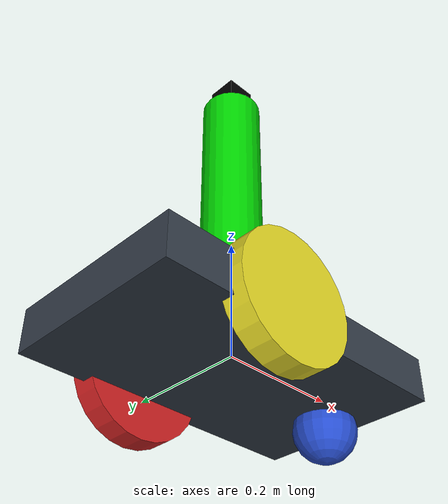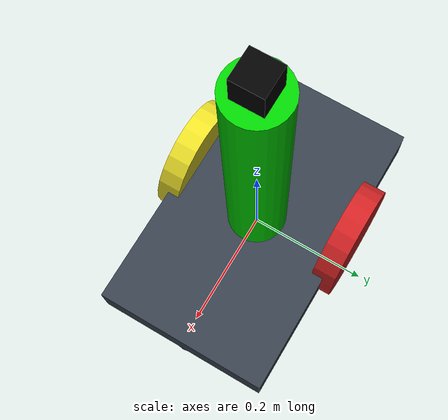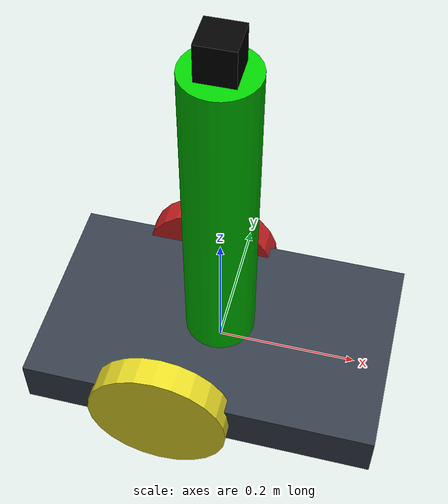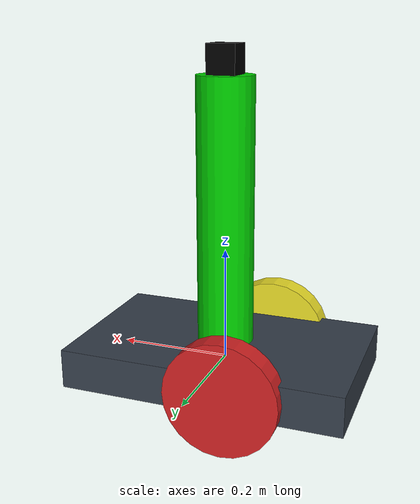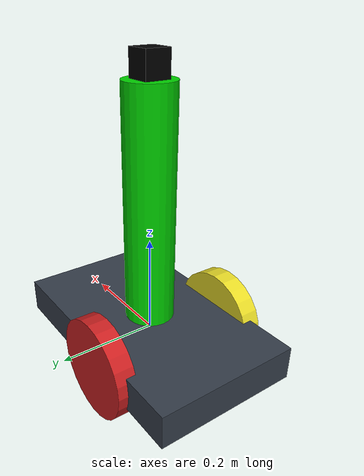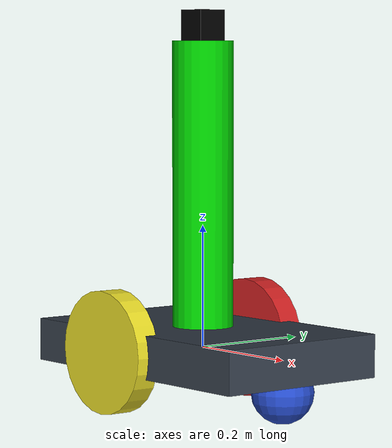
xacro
<?xml version="1.0" ?>
<robot name="robot_rot_camera" xmlns:xacro="http://ros.org/wiki/xacro">
<xacro:include filename="$(find robot_simulation_description)/urdf/robot_rot_camera.gazebo"/>

    <!--    Define weels properies  -->
    <xacro:property name="length_wheel" value="0.04" />
    <xacro:property name="radius_wheel" value="0.1" />

    <!--    Define a general inertial matrix    -->
    <xacro:macro name="default_inertial" params="mass">
        <inertial>
            <mass value="${mass}" />
            <origin rpy="0 1.5707 1.5707" xyz="0 0 0"/>
            <inertia ixx="0.000526666666667" ixy="0" ixz="0" iyy="0.000526666666667" iyz="0" izz="0.001"/>
        </inertial>
    </xacro:macro>

    <!--    Define the wheel geometry   -->
    <xacro:macro name="wheel_geometry">
        <geometry>
            <cylinder length="${length_wheel}" radius="${radius_wheel}"/>
        </geometry>
    </xacro:macro>

    <!--    Define a bunch of colors    -->
    <material name="black">
        <color rgba="0.0 0.0 0.0 1.0"/>
    </material>
    <material name="blue">
        <color rgba="0.203125 0.23828125 0.28515625 1.0"/>
    </material>
    <material name="green">
        <color rgba="0.0 0.8 0.0 1.0"/>
    </material>
    <material name="grey">
        <color rgba="0.2 0.2 0.2 1.0"/>
    </material>
    <material name="orange">
        <color rgba="1.0 0.423529411765 0.0392156862745 1.0"/>
    </material>
    <material name="brown">
        <color rgba="0.870588235294 0.811764705882 0.764705882353 1.0"/>
    </material>
    <material name="red">
        <color rgba="0.80078125 0.12890625 0.1328125 1.0"/>
    </material>
    <material name="white">
        <color rgba="1.0 1.0 1.0 1.0"/>
    </material>

    <!--    Define the moving platform link -->
    <link name="link_chassis">
        <!-- pose and inertial -->
        <pose>0 0 0.1 0 0 0</pose>
        <inertial>
            <mass value="5"/>
            <origin rpy="0 0 0" xyz="0 0 0.1"/>
            <inertia ixx="0.0395416666667" ixy="0" ixz="0" iyy="0.106208333333" iyz="0" izz="0.106208333333"/>
        </inertial>
        <!--    The body of the moving platform    -->
        <collision name="collision_chassis">
            <geometry>
                <box size="0.5 0.3 0.07"/>
            </geometry>
        </collision>
        <visual>
            <origin rpy="0 0 0" xyz="0 0 0"/>
            <geometry>
                <box size="0.5 0.3 0.07"/>
            </geometry>
            <material name="blue"/>
        </visual>
        <!--    The castor wheel in the front  -->
        <collision name="caster_front_collision">
            <origin rpy=" 0 0 0" xyz="0.2 0 -0.05"/>
            <geometry>
                <sphere radius="0.05"/>
            </geometry>
        </collision>
        <visual name="caster_front_visual">
            <origin rpy=" 0 0 0" xyz="0.2 0 -0.05"/>
            <geometry>
                <sphere radius="0.05"/>
            </geometry>
        </visual>
    </link>

    <!--    The fixed wheel on the right    -->
    <link name="link_right_wheel">
        <xacro:default_inertial mass="0.2"/>
        <collision name="link_right_wheel_collision">
            <origin rpy="0 1.5707 1.5707" xyz="0 0 0"/>
            <xacro:wheel_geometry />
        </collision>
        <visual name="link_right_wheel_visual">
            <origin rpy="0 1.5707 1.5707" xyz="0 0 0"/>
            <xacro:wheel_geometry />
            <material name="yellow"/>
        </visual>
    </link>

    <!--    The fixed wheel on the left -->
    <link name="link_left_wheel">
        <xacro:default_inertial mass="0.2"/>
        <collision name="link_lef_wheel_collision">
            <origin rpy="0 1.5707 1.5707" xyz="0 0 0"/>
            <xacro:wheel_geometry />
        </collision>
        <visual name="link_left_wheel_visual">
            <origin rpy="0 1.5707 1.5707" xyz="0 0 0"/>
            <xacro:wheel_geometry />
            <material name="red"/>
        </visual>
    </link>

    <!--    The rotating base where the camera is placed    -->
    <link name="link_rotating_base">
        <inertial>
            <mass value="0.1"/>
            <origin xyz="0 0 0" rpy="0 0 0" />
            <inertia ixx="0.0000416666667" ixy="0" ixz="0" iyy="0.0000416666667" iyz="0" izz="0.0000416666667"/>
        </inertial>
        <collision name="link_rotating_base_collision">
            <origin rpy="0 0 0" xyz="0 0 0" />
            <geometry>
                <cylinder length="0.50" radius="0.05"/>
            </geometry>
        </collision>
        <visual name="link_rotating_base_visual" >
            <origin rpy="0 0 0" xyz="0 0 0" />
            <geometry>
                <cylinder length="0.50" radius="0.05"/>
            </geometry>
            <material name="green"/>
        </visual>
    </link>

    <!--    The camera  -->
    <link name="link_camera" >
        <collision name="link_camera_collision">
            <origin rpy="0 0 0" xyz="0 0 0" />
            <geometry>
                <box size="0.05 0.05 0.05"/>
            </geometry>
        </collision>
        <visual name="link_camera_visual" >
            <origin rpy="0 0 0" xyz="0 0 0.025" />
            <geometry>
                <box size="0.05 0.05 0.05"/>
            </geometry>
            <material name="black"/>
        </visual>
    </link>

    <!--    Joint form moving platform to right fixed wheel -->
    <joint name="joint_right_wheel" type="continuous">
        <origin rpy="0 0 0" xyz="-0.05 -0.15 0"/>
        <child link="link_right_wheel"/>
        <parent link="link_chassis"/>
        <axis rpy="0 0 0" xyz="0 1 0"/>
        <limit effort="10000" velocity="1000"/>
        <joint_properties damping="1.0" friction="1.0"/>
    </joint>

    <!--    Joint form moving platform to left fixed wheel -->
    <joint name="joint_left_wheel" type="continuous">
        <origin rpy="0 0 0" xyz="-0.05 0.15 0"/>
        <child link="link_left_wheel"/>
        <parent link="link_chassis"/>
        <axis rpy="0 0 0" xyz="0 1 0"/>
        <limit effort="10000" velocity="1000"/>
        <joint_properties damping="1.0" friction="1.0"/>
    </joint>

    <!--    Joint form moving platform to to rotating base  -->
    <joint name="joint_rotating_base" type="continuous">
        <origin rpy="0 0 0" xyz="0 0 0.25"/>
        <child link="link_rotating_base"/>
        <parent link="link_chassis"/>
        <axis rpy="0 0 0" xyz="0 0 1"/>
        <limit effort="10000" velocity="1000"/>
        <joint_properties damping="1.0" friction="1.0"/>
    </joint>

    <!--    Joint form the rotating platfrom to the camera  -->
    <joint name="joint_camera" type="fixed">
        <origin xyz="0 0 0.25" rpy="0 0 0"/>
        <parent link="link_rotating_base"/>
        <child link="link_camera"/>
    </joint>

</robot>
